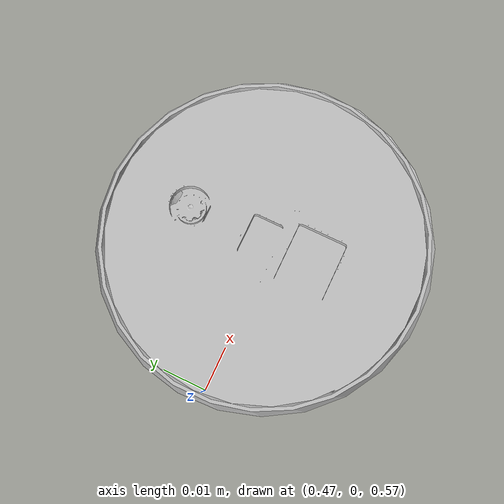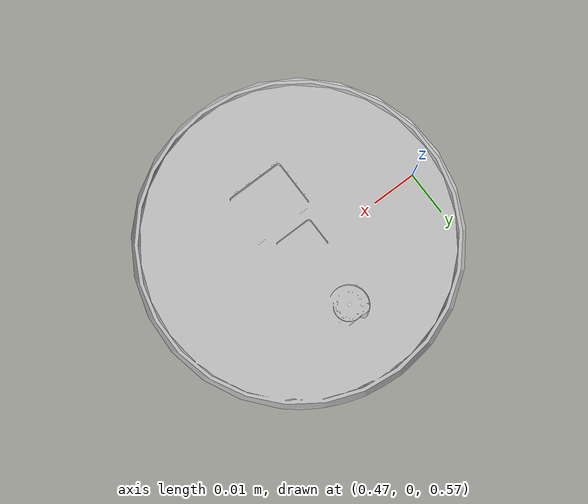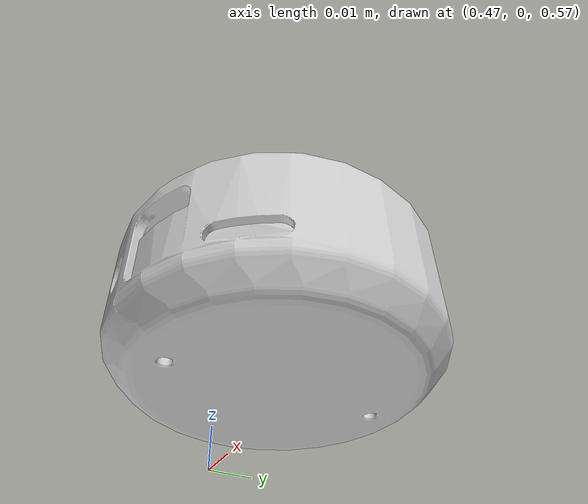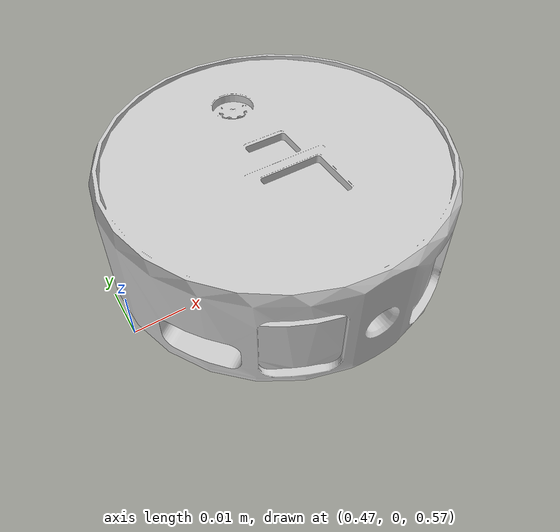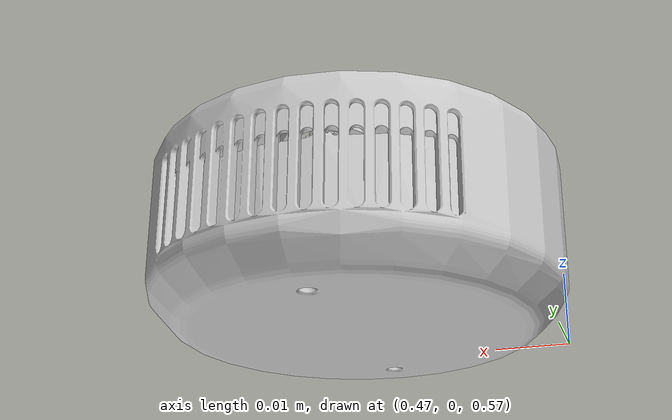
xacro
<?xml version="1.0"?>
<!-- depth_sensor 매크로 기본값 회귀 검증용. stroke/tilt 미전달 시
     camera_to_base_link=fixed, camera_tilt_joint 미생성이어야 한다. -->
<robot name="test_depth_sensor" xmlns:xacro="http://ros.org/wiki/xacro">
  <link name="base_link"/>
  <xacro:include filename="$(find linorobot2_description)/urdf/sensors/depth_sensor.urdf.xacro" />
  <xacro:depth_sensor>
    <origin xyz="0.5 0 0.6" rpy="0 0 0"/>
  </xacro:depth_sensor>
</robot>

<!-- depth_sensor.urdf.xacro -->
<robot xmlns:xacro="http://ros.org/wiki/xacro">
  <xacro:macro name="depth_sensor" params="*origin stroke:=0 tilt:=0">
    <!-- Intel RealSense L515 -->
    <link name="camera_link">
      <visual>
        <origin xyz="0 0 0" rpy="0 0 0"/>
        <geometry>
          <mesh filename="file:///opt/ros/humble/share/realsense2_description/meshes/l515.dae"/>
        </geometry>
      </visual>
      <collision>
        <!-- L515: 직경 61mm, 두께 26mm 원통으로 근사 -->
        <origin xyz="0 0 0" rpy="0 1.5708 0"/>
        <geometry>
          <cylinder radius="0.0305" length="0.026"/>
        </geometry>
      </collision>
      <inertial>
        <origin xyz="0 0 0" rpy="0 0 0"/>
        <mass value="0.1"/>
        <inertia ixx="0.000025" ixy="0.0" ixz="0.0"
                 iyy="0.000025" iyz="0.0"
                 izz="0.000025"/>
      </inertial>
    </link>

    <xacro:if value="${stroke == 0}">
      <joint name="camera_to_base_link" type="fixed">
        <parent link="base_link"/>
        <child link="camera_mount_link"/>
        <xacro:insert_block name="origin"/>
      </joint>
    </xacro:if>
    <xacro:unless value="${stroke == 0}">
      <!-- 리니어 액추에이터: 0=수납(주행), stroke=최대 전개 -->
      <joint name="camera_to_base_link" type="prismatic">
        <parent link="base_link"/>
        <child link="camera_mount_link"/>
        <xacro:insert_block name="origin"/>
        <axis xyz="1 0 0"/>
        <limit lower="0" upper="${stroke}" effort="50" velocity="0.05"/>
        <dynamics damping="20.0" friction="5.0"/>
      </joint>
    </xacro:unless>

    <!-- 붐 끝(리니어 액추에이터의 이동단). 틸트 서보가 여기 붙는다. -->
    <link name="camera_mount_link">
      <inertial>
        <origin xyz="0 0 0" rpy="0 0 0"/>
        <mass value="0.01"/>
        <inertia ixx="0.000001" ixy="0.0" ixz="0.0"
                 iyy="0.000001" iyz="0.0"
                 izz="0.000001"/>
      </inertial>
    </link>

    <xacro:if value="${tilt == 0}">
      <joint name="camera_tilt_joint" type="fixed">
        <parent link="camera_mount_link"/>
        <child link="camera_link"/>
        <origin xyz="0 0 0" rpy="0 0 0"/>
      </joint>
    </xacro:if>
    <xacro:unless value="${tilt == 0}">
      <!-- 틸트 서보: 0=정면(+X), tilt=바닥(-Z). +Y 회전이 +X를 -Z로 보낸다. -->
      <joint name="camera_tilt_joint" type="revolute">
        <parent link="camera_mount_link"/>
        <child link="camera_link"/>
        <origin xyz="0 0 0" rpy="0 0 0"/>
        <axis xyz="0 1 0"/>
        <limit lower="0" upper="${tilt}" effort="20" velocity="1.0"/>
        <dynamics damping="2.0" friction="0.5"/>
      </joint>
    </xacro:unless>

    <link name="camera_depth_link"/>
    <joint name="camera_depth_joint" type="fixed">
      <origin xyz="0 0 0" rpy="-1.5708 0 -1.5708"/>
      <parent link="camera_link"/>
      <child link="camera_depth_link"/>
    </joint>

    <!-- Gazebo Classic 11 depth camera — L515 스펙 -->
    <gazebo reference="camera_link">
      <sensor name="camera" type="depth">
        <always_on>true</always_on>
        <update_rate>10.0</update_rate>
        <visualize>false</visualize>
        <camera name="camera">
          <!-- L515 depth FOV: 70° horizontal = 1.2217 rad -->
          <horizontal_fov>1.2217</horizontal_fov>
          <image>
            <width>640</width>
            <height>480</height>
            <format>R8G8B8</format>
          </image>
          <clip>
            <near>0.25</near>
            <far>9.0</far>
          </clip>
        </camera>
        <plugin name="depth_camera_controller" filename="libgazebo_ros_camera.so">
          <camera_name>camera</camera_name>
          <frame_name>camera_depth_link</frame_name>
          <min_depth>0.25</min_depth>
          <max_depth>9.0</max_depth>
        </plugin>
      </sensor>
    </gazebo>

    <xacro:unless value="${stroke == 0}">
      <gazebo>
        <plugin name="camera_boom_traj" filename="libgazebo_ros_joint_pose_trajectory.so">
          <update_rate>50</update_rate>
        </plugin>
        <plugin name="camera_boom_state" filename="libgazebo_ros_joint_state_publisher.so">
          <update_rate>20</update_rate>
          <joint_name>camera_to_base_link</joint_name>
          <joint_name>camera_tilt_joint</joint_name>
        </plugin>
      </gazebo>
    </xacro:unless>
  </xacro:macro>
</robot>
